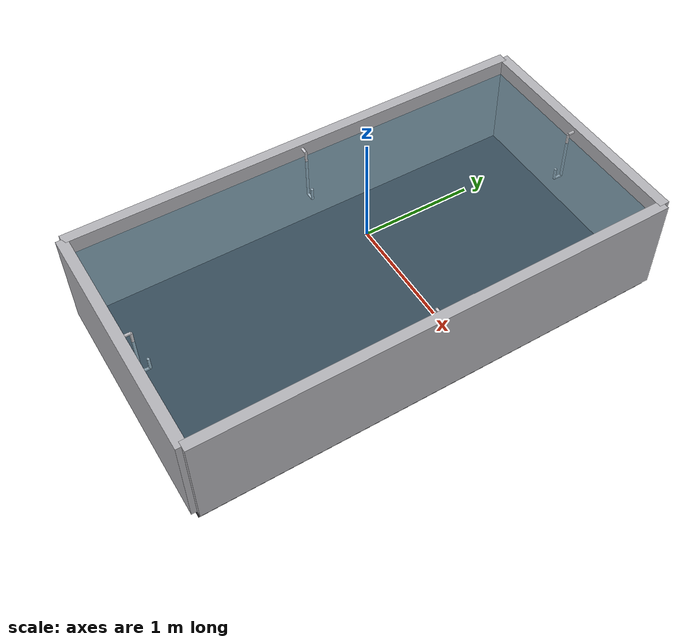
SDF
<?xml version="1.0" ?>
<sdf version="1.9">
  <world name="kki_arena">

    <physics name="1ms" type="ignored">
      <max_step_size>0.001</max_step_size>
      <real_time_factor>1.0</real_time_factor>
    </physics>

    <plugin filename="gz-sim-physics-system"
            name="gz::sim::systems::Physics"/>
    <plugin filename="gz-sim-user-commands-system"
            name="gz::sim::systems::UserCommands"/>
    <plugin filename="gz-sim-scene-broadcaster-system"
            name="gz::sim::systems::SceneBroadcaster"/>
    <plugin filename="gz-sim-contact-system"
            name="gz::sim::systems::Contact"/>

    <plugin filename="gz-sim-imu-system"
            name="gz::sim::systems::Imu"/>
    <plugin filename="gz-sim-sensors-system"
            name="gz::sim::systems::Sensors">
      <render_engine>ogre2</render_engine>
    </plugin>

    <plugin filename="gz-sim-buoyancy-system"
            name="gz::sim::systems::Buoyancy">
      <graded_buoyancy>
        <default_density>1000.0</default_density>
        <density_change>
          <above_depth>0.0</above_depth>
          <density>1.0</density>
        </density_change>
      </graded_buoyancy>
    </plugin>

    <scene>
      <ambient>0.4 0.4 0.4 1</ambient>
      <background>0.1 0.2 0.35 1</background>
      <grid>false</grid>
    </scene>

    <light type="directional" name="sun">
      <cast_shadows>true</cast_shadows>
      <pose>0 0 10 0 0 0</pose>
      <diffuse>0.9 0.9 0.9 1</diffuse>
      <specular>0.2 0.2 0.2 1</specular>
      <direction>-0.3 0.2 -0.9</direction>
    </light>

    <!-- ================= Cangkang kolam: lantai + 4 dinding ================= -->
    <!-- Interior 2,2 x 4,4 m; muka dalam dinding di x=+-1.1 (sisi pendek),
         y=+-2.2 (sisi panjang). Dinding tebal 0,1 m, tinggi 0,95 m (dari
         dasar -0.8 sampai freeboard +0.15). -->
    <model name="pool">
      <static>true</static>

      <!-- Lantai: permukaan atas di z = -0.8. -->
      <link name="floor">
        <pose>0 0 -0.85 0 0 0</pose>
        <collision name="floor_collision">
          <geometry><box><size>2.3 4.5 0.1</size></box></geometry>
        </collision>
        <visual name="floor_visual">
          <geometry><box><size>2.3 4.5 0.1</size></box></geometry>
          <material>
            <ambient>0.20 0.20 0.22 1</ambient>
            <diffuse>0.30 0.30 0.32 1</diffuse>
          </material>
        </visual>
      </link>

      <!-- Dinding +X (pendek, muka dalam di x = 1.1). -->
      <link name="wall_px">
        <pose>1.15 0 -0.325 0 0 0</pose>
        <collision name="wall_px_collision">
          <geometry><box><size>0.1 4.5 0.95</size></box></geometry>
        </collision>
        <visual name="wall_px_visual">
          <geometry><box><size>0.1 4.5 0.95</size></box></geometry>
          <material>
            <ambient>0.55 0.55 0.57 1</ambient>
            <diffuse>0.70 0.70 0.72 1</diffuse>
          </material>
        </visual>
      </link>

      <!-- Dinding -X (pendek). -->
      <link name="wall_nx">
        <pose>-1.15 0 -0.325 0 0 0</pose>
        <collision name="wall_nx_collision">
          <geometry><box><size>0.1 4.5 0.95</size></box></geometry>
        </collision>
        <visual name="wall_nx_visual">
          <geometry><box><size>0.1 4.5 0.95</size></box></geometry>
          <material>
            <ambient>0.55 0.55 0.57 1</ambient>
            <diffuse>0.70 0.70 0.72 1</diffuse>
          </material>
        </visual>
      </link>

      <!-- Dinding +Y (panjang, muka dalam di y = 2.2). -->
      <link name="wall_py">
        <pose>0 2.25 -0.325 0 0 0</pose>
        <collision name="wall_py_collision">
          <geometry><box><size>2.3 0.1 0.95</size></box></geometry>
        </collision>
        <visual name="wall_py_visual">
          <geometry><box><size>2.3 0.1 0.95</size></box></geometry>
          <material>
            <ambient>0.55 0.55 0.57 1</ambient>
            <diffuse>0.70 0.70 0.72 1</diffuse>
          </material>
        </visual>
      </link>

      <!-- Dinding -Y (panjang). -->
      <link name="wall_ny">
        <pose>0 -2.25 -0.325 0 0 0</pose>
        <collision name="wall_ny_collision">
          <geometry><box><size>2.3 0.1 0.95</size></box></geometry>
        </collision>
        <visual name="wall_ny_visual">
          <geometry><box><size>2.3 0.1 0.95</size></box></geometry>
          <material>
            <ambient>0.55 0.55 0.57 1</ambient>
            <diffuse>0.70 0.70 0.72 1</diffuse>
          </material>
        </visual>
      </link>
    </model>

    <!-- Volume air visual (semi-transparan), tanpa collision. Permukaan di
         z = 0, dasar di z = -0.8. -->
    <model name="water_volume">
      <static>true</static>
      <pose>0 0 -0.4 0 0 0</pose>
      <link name="water_link">
        <visual name="water_visual">
          <geometry><box><size>2.2 4.4 0.8</size></box></geometry>
          <material>
            <ambient>0.0 0.25 0.4 0.25</ambient>
            <diffuse>0.0 0.35 0.5 0.25</diffuse>
          </material>
          <transparency>0.75</transparency>
        </visual>
      </link>
    </model>

    <light type="point" name="payload_fill">
      <cast_shadows>false</cast_shadows>
      <pose>0 0 -0.4 0 0 0</pose>
      <diffuse>0.9 0.9 0.9 1</diffuse>
      <specular>0.1 0.1 0.1 1</specular>
      <attenuation>
        <range>3.0</range>
        <constant>0.6</constant>
        <linear>0.15</linear>
        <quadratic>0.08</quadratic>
      </attenuation>
    </light>

    <!-- ============================ Hook / gantungan ============================ -->
    <model name="hook_d">
      <static>true</static>
      <pose>-1.1 0 0 0 0 0</pose>
      <link name="gantungan">
        <collision name="mount_collision">
          <pose>0.03 0 0.10 0 1.5708 0</pose>
          <geometry><cylinder><radius>0.0125</radius><length>0.06</length></cylinder></geometry>
        </collision>
        <visual name="mount_visual">
          <pose>0.03 0 0.10 0 1.5708 0</pose>
          <geometry><cylinder><radius>0.0125</radius><length>0.06</length></cylinder></geometry>
          <material><ambient>0.7 0.7 0.72 1</ambient><diffuse>0.8 0.8 0.82 1</diffuse></material>
        </visual>
        <collision name="riser_collision">
          <pose>0.06 0 -0.1575 0 0 0</pose>
          <geometry><cylinder><radius>0.0125</radius><length>0.515</length></cylinder></geometry>
        </collision>
        <visual name="riser_visual">
          <pose>0.06 0 -0.1575 0 0 0</pose>
          <geometry><cylinder><radius>0.0125</radius><length>0.515</length></cylinder></geometry>
          <material><ambient>0.7 0.7 0.72 1</ambient><diffuse>0.8 0.8 0.82 1</diffuse></material>
        </visual>
        <collision name="bottom_collision">
          <pose>0.10 0 -0.415 0 1.5708 0</pose>
          <geometry><cylinder><radius>0.0125</radius><length>0.08</length></cylinder></geometry>
        </collision>
        <visual name="bottom_visual">
          <pose>0.10 0 -0.415 0 1.5708 0</pose>
          <geometry><cylinder><radius>0.0125</radius><length>0.08</length></cylinder></geometry>
          <material><ambient>0.7 0.7 0.72 1</ambient><diffuse>0.8 0.8 0.82 1</diffuse></material>
        </visual>
        <collision name="tip_collision">
          <pose>0.14 0 -0.355 0 0 0</pose>
          <geometry><cylinder><radius>0.0125</radius><length>0.12</length></cylinder></geometry>
        </collision>
        <visual name="tip_visual">
          <pose>0.14 0 -0.355 0 0 0</pose>
          <geometry><cylinder><radius>0.0125</radius><length>0.12</length></cylinder></geometry>
          <material><ambient>0.7 0.7 0.72 1</ambient><diffuse>0.8 0.8 0.82 1</diffuse></material>
        </visual>
      </link>
    </model>

    <model name="hook_c">
      <static>true</static>
      <pose>1.1 0 0 0 0 3.14159</pose>
      <link name="gantungan">
        <collision name="mount_collision">
          <pose>0.03 0 0.10 0 1.5708 0</pose>
          <geometry><cylinder><radius>0.0125</radius><length>0.06</length></cylinder></geometry>
        </collision>
        <visual name="mount_visual">
          <pose>0.03 0 0.10 0 1.5708 0</pose>
          <geometry><cylinder><radius>0.0125</radius><length>0.06</length></cylinder></geometry>
          <material><ambient>0.7 0.7 0.72 1</ambient><diffuse>0.8 0.8 0.82 1</diffuse></material>
        </visual>
        <collision name="riser_collision">
          <pose>0.06 0 -0.1575 0 0 0</pose>
          <geometry><cylinder><radius>0.0125</radius><length>0.515</length></cylinder></geometry>
        </collision>
        <visual name="riser_visual">
          <pose>0.06 0 -0.1575 0 0 0</pose>
          <geometry><cylinder><radius>0.0125</radius><length>0.515</length></cylinder></geometry>
          <material><ambient>0.7 0.7 0.72 1</ambient><diffuse>0.8 0.8 0.82 1</diffuse></material>
        </visual>
        <collision name="bottom_collision">
          <pose>0.10 0 -0.415 0 1.5708 0</pose>
          <geometry><cylinder><radius>0.0125</radius><length>0.08</length></cylinder></geometry>
        </collision>
        <visual name="bottom_visual">
          <pose>0.10 0 -0.415 0 1.5708 0</pose>
          <geometry><cylinder><radius>0.0125</radius><length>0.08</length></cylinder></geometry>
          <material><ambient>0.7 0.7 0.72 1</ambient><diffuse>0.8 0.8 0.82 1</diffuse></material>
        </visual>
        <collision name="tip_collision">
          <pose>0.14 0 -0.355 0 0 0</pose>
          <geometry><cylinder><radius>0.0125</radius><length>0.12</length></cylinder></geometry>
        </collision>
        <visual name="tip_visual">
          <pose>0.14 0 -0.355 0 0 0</pose>
          <geometry><cylinder><radius>0.0125</radius><length>0.12</length></cylinder></geometry>
          <material><ambient>0.7 0.7 0.72 1</ambient><diffuse>0.8 0.8 0.82 1</diffuse></material>
        </visual>
      </link>
    </model>

    <model name="hook_a">
      <static>true</static>
      <pose>0 -2.2 0 0 0 1.5708</pose>
      <link name="gantungan">
        <collision name="mount_collision">
          <pose>0.03 0 0.10 0 1.5708 0</pose>
          <geometry><cylinder><radius>0.0125</radius><length>0.06</length></cylinder></geometry>
        </collision>
        <visual name="mount_visual">
          <pose>0.03 0 0.10 0 1.5708 0</pose>
          <geometry><cylinder><radius>0.0125</radius><length>0.06</length></cylinder></geometry>
          <material><ambient>0.7 0.7 0.72 1</ambient><diffuse>0.8 0.8 0.82 1</diffuse></material>
        </visual>
        <collision name="riser_collision">
          <pose>0.06 0 -0.1575 0 0 0</pose>
          <geometry><cylinder><radius>0.0125</radius><length>0.515</length></cylinder></geometry>
        </collision>
        <visual name="riser_visual">
          <pose>0.06 0 -0.1575 0 0 0</pose>
          <geometry><cylinder><radius>0.0125</radius><length>0.515</length></cylinder></geometry>
          <material><ambient>0.7 0.7 0.72 1</ambient><diffuse>0.8 0.8 0.82 1</diffuse></material>
        </visual>
        <collision name="bottom_collision">
          <pose>0.10 0 -0.415 0 1.5708 0</pose>
          <geometry><cylinder><radius>0.0125</radius><length>0.08</length></cylinder></geometry>
        </collision>
        <visual name="bottom_visual">
          <pose>0.10 0 -0.415 0 1.5708 0</pose>
          <geometry><cylinder><radius>0.0125</radius><length>0.08</length></cylinder></geometry>
          <material><ambient>0.7 0.7 0.72 1</ambient><diffuse>0.8 0.8 0.82 1</diffuse></material>
        </visual>
        <collision name="tip_collision">
          <pose>0.14 0 -0.355 0 0 0</pose>
          <geometry><cylinder><radius>0.0125</radius><length>0.12</length></cylinder></geometry>
        </collision>
        <visual name="tip_visual">
          <pose>0.14 0 -0.355 0 0 0</pose>
          <geometry><cylinder><radius>0.0125</radius><length>0.12</length></cylinder></geometry>
          <material><ambient>0.7 0.7 0.72 1</ambient><diffuse>0.8 0.8 0.82 1</diffuse></material>
        </visual>
      </link>
    </model>

    <model name="hook_b">
      <static>true</static>
      <pose>0 2.2 0 0 0 -1.5708</pose>
      <link name="gantungan">
        <collision name="mount_collision">
          <pose>0.03 0 0.10 0 1.5708 0</pose>
          <geometry><cylinder><radius>0.0125</radius><length>0.06</length></cylinder></geometry>
        </collision>
        <visual name="mount_visual">
          <pose>0.03 0 0.10 0 1.5708 0</pose>
          <geometry><cylinder><radius>0.0125</radius><length>0.06</length></cylinder></geometry>
          <material><ambient>0.7 0.7 0.72 1</ambient><diffuse>0.8 0.8 0.82 1</diffuse></material>
        </visual>
        <collision name="riser_collision">
          <pose>0.06 0 -0.1575 0 0 0</pose>
          <geometry><cylinder><radius>0.0125</radius><length>0.515</length></cylinder></geometry>
        </collision>
        <visual name="riser_visual">
          <pose>0.06 0 -0.1575 0 0 0</pose>
          <geometry><cylinder><radius>0.0125</radius><length>0.515</length></cylinder></geometry>
          <material><ambient>0.7 0.7 0.72 1</ambient><diffuse>0.8 0.8 0.82 1</diffuse></material>
        </visual>
        <collision name="bottom_collision">
          <pose>0.10 0 -0.415 0 1.5708 0</pose>
          <geometry><cylinder><radius>0.0125</radius><length>0.08</length></cylinder></geometry>
        </collision>
        <visual name="bottom_visual">
          <pose>0.10 0 -0.415 0 1.5708 0</pose>
          <geometry><cylinder><radius>0.0125</radius><length>0.08</length></cylinder></geometry>
          <material><ambient>0.7 0.7 0.72 1</ambient><diffuse>0.8 0.8 0.82 1</diffuse></material>
        </visual>
        <collision name="tip_collision">
          <pose>0.14 0 -0.355 0 0 0</pose>
          <geometry><cylinder><radius>0.0125</radius><length>0.12</length></cylinder></geometry>
        </collision>
        <visual name="tip_visual">
          <pose>0.14 0 -0.355 0 0 0</pose>
          <geometry><cylinder><radius>0.0125</radius><length>0.12</length></cylinder></geometry>
          <material><ambient>0.7 0.7 0.72 1</ambient><diffuse>0.8 0.8 0.82 1</diffuse></material>
        </visual>
      </link>
    </model>

  </world>
</sdf>
